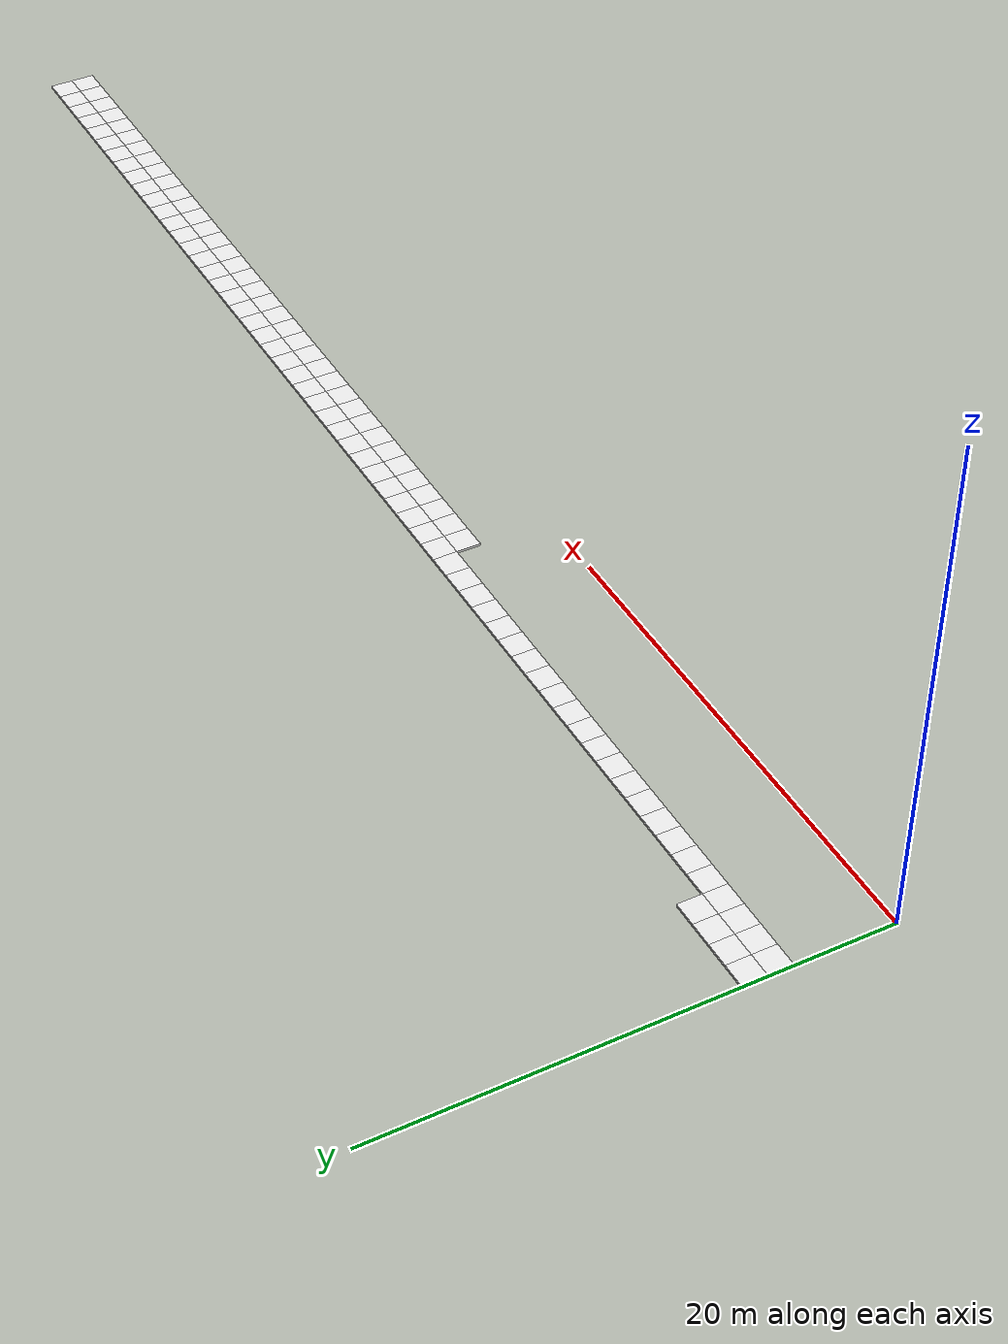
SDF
<sdf version="1.6">
 <world name="grid_world">
  <model name="cell_23_3">
   <static>true</static>
   <link name="link">
    <collision name="collision"><geometry><box><size>1 1 0.1</size></box></geometry></collision>
    <visual name="visual">
     <geometry><box><size>1 1 0.1</size></box></geometry>
     <material>
      <script><uri>file://media/materials/scripts/gazebo.material</uri><name>Gazebo/White</name></script>
     </material>
    </visual>
    <pose>23.5 3.5 0.05 0 0 0</pose>
   </link>
  </model>
  <model name="cell_24_3">
   <static>true</static>
   <link name="link">
    <collision name="collision"><geometry><box><size>1 1 0.1</size></box></geometry></collision>
    <visual name="visual">
     <geometry><box><size>1 1 0.1</size></box></geometry>
     <material>
      <script><uri>file://media/materials/scripts/gazebo.material</uri><name>Gazebo/White</name></script>
     </material>
    </visual>
    <pose>24.5 3.5 0.05 0 0 0</pose>
   </link>
  </model>
  <model name="cell_25_3">
   <static>true</static>
   <link name="link">
    <collision name="collision"><geometry><box><size>1 1 0.1</size></box></geometry></collision>
    <visual name="visual">
     <geometry><box><size>1 1 0.1</size></box></geometry>
     <material>
      <script><uri>file://media/materials/scripts/gazebo.material</uri><name>Gazebo/White</name></script>
     </material>
    </visual>
    <pose>25.5 3.5 0.05 0 0 0</pose>
   </link>
  </model>
  <model name="cell_26_3">
   <static>true</static>
   <link name="link">
    <collision name="collision"><geometry><box><size>1 1 0.1</size></box></geometry></collision>
    <visual name="visual">
     <geometry><box><size>1 1 0.1</size></box></geometry>
     <material>
      <script><uri>file://media/materials/scripts/gazebo.material</uri><name>Gazebo/White</name></script>
     </material>
    </visual>
    <pose>26.5 3.5 0.05 0 0 0</pose>
   </link>
  </model>
  <model name="cell_27_3">
   <static>true</static>
   <link name="link">
    <collision name="collision"><geometry><box><size>1 1 0.1</size></box></geometry></collision>
    <visual name="visual">
     <geometry><box><size>1 1 0.1</size></box></geometry>
     <material>
      <script><uri>file://media/materials/scripts/gazebo.material</uri><name>Gazebo/White</name></script>
     </material>
    </visual>
    <pose>27.5 3.5 0.05 0 0 0</pose>
   </link>
  </model>
  <model name="cell_28_3">
   <static>true</static>
   <link name="link">
    <collision name="collision"><geometry><box><size>1 1 0.1</size></box></geometry></collision>
    <visual name="visual">
     <geometry><box><size>1 1 0.1</size></box></geometry>
     <material>
      <script><uri>file://media/materials/scripts/gazebo.material</uri><name>Gazebo/White</name></script>
     </material>
    </visual>
    <pose>28.5 3.5 0.05 0 0 0</pose>
   </link>
  </model>
  <model name="cell_29_3">
   <static>true</static>
   <link name="link">
    <collision name="collision"><geometry><box><size>1 1 0.1</size></box></geometry></collision>
    <visual name="visual">
     <geometry><box><size>1 1 0.1</size></box></geometry>
     <material>
      <script><uri>file://media/materials/scripts/gazebo.material</uri><name>Gazebo/White</name></script>
     </material>
    </visual>
    <pose>29.5 3.5 0.05 0 0 0</pose>
   </link>
  </model>
  <model name="cell_30_3">
   <static>true</static>
   <link name="link">
    <collision name="collision"><geometry><box><size>1 1 0.1</size></box></geometry></collision>
    <visual name="visual">
     <geometry><box><size>1 1 0.1</size></box></geometry>
     <material>
      <script><uri>file://media/materials/scripts/gazebo.material</uri><name>Gazebo/White</name></script>
     </material>
    </visual>
    <pose>30.5 3.5 0.05 0 0 0</pose>
   </link>
  </model>
  <model name="cell_31_3">
   <static>true</static>
   <link name="link">
    <collision name="collision"><geometry><box><size>1 1 0.1</size></box></geometry></collision>
    <visual name="visual">
     <geometry><box><size>1 1 0.1</size></box></geometry>
     <material>
      <script><uri>file://media/materials/scripts/gazebo.material</uri><name>Gazebo/White</name></script>
     </material>
    </visual>
    <pose>31.5 3.5 0.05 0 0 0</pose>
   </link>
  </model>
  <model name="cell_32_3">
   <static>true</static>
   <link name="link">
    <collision name="collision"><geometry><box><size>1 1 0.1</size></box></geometry></collision>
    <visual name="visual">
     <geometry><box><size>1 1 0.1</size></box></geometry>
     <material>
      <script><uri>file://media/materials/scripts/gazebo.material</uri><name>Gazebo/White</name></script>
     </material>
    </visual>
    <pose>32.5 3.5 0.05 0 0 0</pose>
   </link>
  </model>
  <model name="cell_33_3">
   <static>true</static>
   <link name="link">
    <collision name="collision"><geometry><box><size>1 1 0.1</size></box></geometry></collision>
    <visual name="visual">
     <geometry><box><size>1 1 0.1</size></box></geometry>
     <material>
      <script><uri>file://media/materials/scripts/gazebo.material</uri><name>Gazebo/White</name></script>
     </material>
    </visual>
    <pose>33.5 3.5 0.05 0 0 0</pose>
   </link>
  </model>
  <model name="cell_34_3">
   <static>true</static>
   <link name="link">
    <collision name="collision"><geometry><box><size>1 1 0.1</size></box></geometry></collision>
    <visual name="visual">
     <geometry><box><size>1 1 0.1</size></box></geometry>
     <material>
      <script><uri>file://media/materials/scripts/gazebo.material</uri><name>Gazebo/White</name></script>
     </material>
    </visual>
    <pose>34.5 3.5 0.05 0 0 0</pose>
   </link>
  </model>
  <model name="cell_35_3">
   <static>true</static>
   <link name="link">
    <collision name="collision"><geometry><box><size>1 1 0.1</size></box></geometry></collision>
    <visual name="visual">
     <geometry><box><size>1 1 0.1</size></box></geometry>
     <material>
      <script><uri>file://media/materials/scripts/gazebo.material</uri><name>Gazebo/White</name></script>
     </material>
    </visual>
    <pose>35.5 3.5 0.05 0 0 0</pose>
   </link>
  </model>
  <model name="cell_36_3">
   <static>true</static>
   <link name="link">
    <collision name="collision"><geometry><box><size>1 1 0.1</size></box></geometry></collision>
    <visual name="visual">
     <geometry><box><size>1 1 0.1</size></box></geometry>
     <material>
      <script><uri>file://media/materials/scripts/gazebo.material</uri><name>Gazebo/White</name></script>
     </material>
    </visual>
    <pose>36.5 3.5 0.05 0 0 0</pose>
   </link>
  </model>
  <model name="cell_37_3">
   <static>true</static>
   <link name="link">
    <collision name="collision"><geometry><box><size>1 1 0.1</size></box></geometry></collision>
    <visual name="visual">
     <geometry><box><size>1 1 0.1</size></box></geometry>
     <material>
      <script><uri>file://media/materials/scripts/gazebo.material</uri><name>Gazebo/White</name></script>
     </material>
    </visual>
    <pose>37.5 3.5 0.05 0 0 0</pose>
   </link>
  </model>
  <model name="cell_38_3">
   <static>true</static>
   <link name="link">
    <collision name="collision"><geometry><box><size>1 1 0.1</size></box></geometry></collision>
    <visual name="visual">
     <geometry><box><size>1 1 0.1</size></box></geometry>
     <material>
      <script><uri>file://media/materials/scripts/gazebo.material</uri><name>Gazebo/White</name></script>
     </material>
    </visual>
    <pose>38.5 3.5 0.05 0 0 0</pose>
   </link>
  </model>
  <model name="cell_39_3">
   <static>true</static>
   <link name="link">
    <collision name="collision"><geometry><box><size>1 1 0.1</size></box></geometry></collision>
    <visual name="visual">
     <geometry><box><size>1 1 0.1</size></box></geometry>
     <material>
      <script><uri>file://media/materials/scripts/gazebo.material</uri><name>Gazebo/White</name></script>
     </material>
    </visual>
    <pose>39.5 3.5 0.05 0 0 0</pose>
   </link>
  </model>
  <model name="cell_40_3">
   <static>true</static>
   <link name="link">
    <collision name="collision"><geometry><box><size>1 1 0.1</size></box></geometry></collision>
    <visual name="visual">
     <geometry><box><size>1 1 0.1</size></box></geometry>
     <material>
      <script><uri>file://media/materials/scripts/gazebo.material</uri><name>Gazebo/White</name></script>
     </material>
    </visual>
    <pose>40.5 3.5 0.05 0 0 0</pose>
   </link>
  </model>
  <model name="cell_41_3">
   <static>true</static>
   <link name="link">
    <collision name="collision"><geometry><box><size>1 1 0.1</size></box></geometry></collision>
    <visual name="visual">
     <geometry><box><size>1 1 0.1</size></box></geometry>
     <material>
      <script><uri>file://media/materials/scripts/gazebo.material</uri><name>Gazebo/White</name></script>
     </material>
    </visual>
    <pose>41.5 3.5 0.05 0 0 0</pose>
   </link>
  </model>
  <model name="cell_42_3">
   <static>true</static>
   <link name="link">
    <collision name="collision"><geometry><box><size>1 1 0.1</size></box></geometry></collision>
    <visual name="visual">
     <geometry><box><size>1 1 0.1</size></box></geometry>
     <material>
      <script><uri>file://media/materials/scripts/gazebo.material</uri><name>Gazebo/White</name></script>
     </material>
    </visual>
    <pose>42.5 3.5 0.05 0 0 0</pose>
   </link>
  </model>
  <model name="cell_43_3">
   <static>true</static>
   <link name="link">
    <collision name="collision"><geometry><box><size>1 1 0.1</size></box></geometry></collision>
    <visual name="visual">
     <geometry><box><size>1 1 0.1</size></box></geometry>
     <material>
      <script><uri>file://media/materials/scripts/gazebo.material</uri><name>Gazebo/White</name></script>
     </material>
    </visual>
    <pose>43.5 3.5 0.05 0 0 0</pose>
   </link>
  </model>
  <model name="cell_44_3">
   <static>true</static>
   <link name="link">
    <collision name="collision"><geometry><box><size>1 1 0.1</size></box></geometry></collision>
    <visual name="visual">
     <geometry><box><size>1 1 0.1</size></box></geometry>
     <material>
      <script><uri>file://media/materials/scripts/gazebo.material</uri><name>Gazebo/White</name></script>
     </material>
    </visual>
    <pose>44.5 3.5 0.05 0 0 0</pose>
   </link>
  </model>
  <model name="cell_45_3">
   <static>true</static>
   <link name="link">
    <collision name="collision"><geometry><box><size>1 1 0.1</size></box></geometry></collision>
    <visual name="visual">
     <geometry><box><size>1 1 0.1</size></box></geometry>
     <material>
      <script><uri>file://media/materials/scripts/gazebo.material</uri><name>Gazebo/White</name></script>
     </material>
    </visual>
    <pose>45.5 3.5 0.05 0 0 0</pose>
   </link>
  </model>
  <model name="cell_46_3">
   <static>true</static>
   <link name="link">
    <collision name="collision"><geometry><box><size>1 1 0.1</size></box></geometry></collision>
    <visual name="visual">
     <geometry><box><size>1 1 0.1</size></box></geometry>
     <material>
      <script><uri>file://media/materials/scripts/gazebo.material</uri><name>Gazebo/White</name></script>
     </material>
    </visual>
    <pose>46.5 3.5 0.05 0 0 0</pose>
   </link>
  </model>
  <model name="cell_47_3">
   <static>true</static>
   <link name="link">
    <collision name="collision"><geometry><box><size>1 1 0.1</size></box></geometry></collision>
    <visual name="visual">
     <geometry><box><size>1 1 0.1</size></box></geometry>
     <material>
      <script><uri>file://media/materials/scripts/gazebo.material</uri><name>Gazebo/White</name></script>
     </material>
    </visual>
    <pose>47.5 3.5 0.05 0 0 0</pose>
   </link>
  </model>
  <model name="cell_48_3">
   <static>true</static>
   <link name="link">
    <collision name="collision"><geometry><box><size>1 1 0.1</size></box></geometry></collision>
    <visual name="visual">
     <geometry><box><size>1 1 0.1</size></box></geometry>
     <material>
      <script><uri>file://media/materials/scripts/gazebo.material</uri><name>Gazebo/White</name></script>
     </material>
    </visual>
    <pose>48.5 3.5 0.05 0 0 0</pose>
   </link>
  </model>
  <model name="cell_49_3">
   <static>true</static>
   <link name="link">
    <collision name="collision"><geometry><box><size>1 1 0.1</size></box></geometry></collision>
    <visual name="visual">
     <geometry><box><size>1 1 0.1</size></box></geometry>
     <material>
      <script><uri>file://media/materials/scripts/gazebo.material</uri><name>Gazebo/White</name></script>
     </material>
    </visual>
    <pose>49.5 3.5 0.05 0 0 0</pose>
   </link>
  </model>
  <model name="cell_50_3">
   <static>true</static>
   <link name="link">
    <collision name="collision"><geometry><box><size>1 1 0.1</size></box></geometry></collision>
    <visual name="visual">
     <geometry><box><size>1 1 0.1</size></box></geometry>
     <material>
      <script><uri>file://media/materials/scripts/gazebo.material</uri><name>Gazebo/White</name></script>
     </material>
    </visual>
    <pose>50.5 3.5 0.05 0 0 0</pose>
   </link>
  </model>
  <model name="cell_51_3">
   <static>true</static>
   <link name="link">
    <collision name="collision"><geometry><box><size>1 1 0.1</size></box></geometry></collision>
    <visual name="visual">
     <geometry><box><size>1 1 0.1</size></box></geometry>
     <material>
      <script><uri>file://media/materials/scripts/gazebo.material</uri><name>Gazebo/White</name></script>
     </material>
    </visual>
    <pose>51.5 3.5 0.05 0 0 0</pose>
   </link>
  </model>
  <model name="cell_52_3">
   <static>true</static>
   <link name="link">
    <collision name="collision"><geometry><box><size>1 1 0.1</size></box></geometry></collision>
    <visual name="visual">
     <geometry><box><size>1 1 0.1</size></box></geometry>
     <material>
      <script><uri>file://media/materials/scripts/gazebo.material</uri><name>Gazebo/White</name></script>
     </material>
    </visual>
    <pose>52.5 3.5 0.05 0 0 0</pose>
   </link>
  </model>
  <model name="cell_53_3">
   <static>true</static>
   <link name="link">
    <collision name="collision"><geometry><box><size>1 1 0.1</size></box></geometry></collision>
    <visual name="visual">
     <geometry><box><size>1 1 0.1</size></box></geometry>
     <material>
      <script><uri>file://media/materials/scripts/gazebo.material</uri><name>Gazebo/White</name></script>
     </material>
    </visual>
    <pose>53.5 3.5 0.05 0 0 0</pose>
   </link>
  </model>
  <model name="cell_54_3">
   <static>true</static>
   <link name="link">
    <collision name="collision"><geometry><box><size>1 1 0.1</size></box></geometry></collision>
    <visual name="visual">
     <geometry><box><size>1 1 0.1</size></box></geometry>
     <material>
      <script><uri>file://media/materials/scripts/gazebo.material</uri><name>Gazebo/White</name></script>
     </material>
    </visual>
    <pose>54.5 3.5 0.05 0 0 0</pose>
   </link>
  </model>
  <model name="cell_55_3">
   <static>true</static>
   <link name="link">
    <collision name="collision"><geometry><box><size>1 1 0.1</size></box></geometry></collision>
    <visual name="visual">
     <geometry><box><size>1 1 0.1</size></box></geometry>
     <material>
      <script><uri>file://media/materials/scripts/gazebo.material</uri><name>Gazebo/White</name></script>
     </material>
    </visual>
    <pose>55.5 3.5 0.05 0 0 0</pose>
   </link>
  </model>
  <model name="cell_56_3">
   <static>true</static>
   <link name="link">
    <collision name="collision"><geometry><box><size>1 1 0.1</size></box></geometry></collision>
    <visual name="visual">
     <geometry><box><size>1 1 0.1</size></box></geometry>
     <material>
      <script><uri>file://media/materials/scripts/gazebo.material</uri><name>Gazebo/White</name></script>
     </material>
    </visual>
    <pose>56.5 3.5 0.05 0 0 0</pose>
   </link>
  </model>
  <model name="cell_57_3">
   <static>true</static>
   <link name="link">
    <collision name="collision"><geometry><box><size>1 1 0.1</size></box></geometry></collision>
    <visual name="visual">
     <geometry><box><size>1 1 0.1</size></box></geometry>
     <material>
      <script><uri>file://media/materials/scripts/gazebo.material</uri><name>Gazebo/White</name></script>
     </material>
    </visual>
    <pose>57.5 3.5 0.05 0 0 0</pose>
   </link>
  </model>
  <model name="cell_58_3">
   <static>true</static>
   <link name="link">
    <collision name="collision"><geometry><box><size>1 1 0.1</size></box></geometry></collision>
    <visual name="visual">
     <geometry><box><size>1 1 0.1</size></box></geometry>
     <material>
      <script><uri>file://media/materials/scripts/gazebo.material</uri><name>Gazebo/White</name></script>
     </material>
    </visual>
    <pose>58.5 3.5 0.05 0 0 0</pose>
   </link>
  </model>
  <model name="cell_59_3">
   <static>true</static>
   <link name="link">
    <collision name="collision"><geometry><box><size>1 1 0.1</size></box></geometry></collision>
    <visual name="visual">
     <geometry><box><size>1 1 0.1</size></box></geometry>
     <material>
      <script><uri>file://media/materials/scripts/gazebo.material</uri><name>Gazebo/White</name></script>
     </material>
    </visual>
    <pose>59.5 3.5 0.05 0 0 0</pose>
   </link>
  </model>
  <model name="cell_0_4">
   <static>true</static>
   <link name="link">
    <collision name="collision"><geometry><box><size>1 1 0.1</size></box></geometry></collision>
    <visual name="visual">
     <geometry><box><size>1 1 0.1</size></box></geometry>
     <material>
      <script><uri>file://media/materials/scripts/gazebo.material</uri><name>Gazebo/White</name></script>
     </material>
    </visual>
    <pose>0.5 4.5 0.05 0 0 0</pose>
   </link>
  </model>
  <model name="cell_1_4">
   <static>true</static>
   <link name="link">
    <collision name="collision"><geometry><box><size>1 1 0.1</size></box></geometry></collision>
    <visual name="visual">
     <geometry><box><size>1 1 0.1</size></box></geometry>
     <material>
      <script><uri>file://media/materials/scripts/gazebo.material</uri><name>Gazebo/White</name></script>
     </material>
    </visual>
    <pose>1.5 4.5 0.05 0 0 0</pose>
   </link>
  </model>
  <model name="cell_2_4">
   <static>true</static>
   <link name="link">
    <collision name="collision"><geometry><box><size>1 1 0.1</size></box></geometry></collision>
    <visual name="visual">
     <geometry><box><size>1 1 0.1</size></box></geometry>
     <material>
      <script><uri>file://media/materials/scripts/gazebo.material</uri><name>Gazebo/White</name></script>
     </material>
    </visual>
    <pose>2.5 4.5 0.05 0 0 0</pose>
   </link>
  </model>
  <model name="cell_3_4">
   <static>true</static>
   <link name="link">
    <collision name="collision"><geometry><box><size>1 1 0.1</size></box></geometry></collision>
    <visual name="visual">
     <geometry><box><size>1 1 0.1</size></box></geometry>
     <material>
      <script><uri>file://media/materials/scripts/gazebo.material</uri><name>Gazebo/White</name></script>
     </material>
    </visual>
    <pose>3.5 4.5 0.05 0 0 0</pose>
   </link>
  </model>
  <model name="cell_4_4">
   <static>true</static>
   <link name="link">
    <collision name="collision"><geometry><box><size>1 1 0.1</size></box></geometry></collision>
    <visual name="visual">
     <geometry><box><size>1 1 0.1</size></box></geometry>
     <material>
      <script><uri>file://media/materials/scripts/gazebo.material</uri><name>Gazebo/White</name></script>
     </material>
    </visual>
    <pose>4.5 4.5 0.05 0 0 0</pose>
   </link>
  </model>
  <model name="cell_5_4">
   <static>true</static>
   <link name="link">
    <collision name="collision"><geometry><box><size>1 1 0.1</size></box></geometry></collision>
    <visual name="visual">
     <geometry><box><size>1 1 0.1</size></box></geometry>
     <material>
      <script><uri>file://media/materials/scripts/gazebo.material</uri><name>Gazebo/White</name></script>
     </material>
    </visual>
    <pose>5.5 4.5 0.05 0 0 0</pose>
   </link>
  </model>
  <model name="cell_6_4">
   <static>true</static>
   <link name="link">
    <collision name="collision"><geometry><box><size>1 1 0.1</size></box></geometry></collision>
    <visual name="visual">
     <geometry><box><size>1 1 0.1</size></box></geometry>
     <material>
      <script><uri>file://media/materials/scripts/gazebo.material</uri><name>Gazebo/White</name></script>
     </material>
    </visual>
    <pose>6.5 4.5 0.05 0 0 0</pose>
   </link>
  </model>
  <model name="cell_7_4">
   <static>true</static>
   <link name="link">
    <collision name="collision"><geometry><box><size>1 1 0.1</size></box></geometry></collision>
    <visual name="visual">
     <geometry><box><size>1 1 0.1</size></box></geometry>
     <material>
      <script><uri>file://media/materials/scripts/gazebo.material</uri><name>Gazebo/White</name></script>
     </material>
    </visual>
    <pose>7.5 4.5 0.05 0 0 0</pose>
   </link>
  </model>
  <model name="cell_8_4">
   <static>true</static>
   <link name="link">
    <collision name="collision"><geometry><box><size>1 1 0.1</size></box></geometry></collision>
    <visual name="visual">
     <geometry><box><size>1 1 0.1</size></box></geometry>
     <material>
      <script><uri>file://media/materials/scripts/gazebo.material</uri><name>Gazebo/White</name></script>
     </material>
    </visual>
    <pose>8.5 4.5 0.05 0 0 0</pose>
   </link>
  </model>
  <model name="cell_9_4">
   <static>true</static>
   <link name="link">
    <collision name="collision"><geometry><box><size>1 1 0.1</size></box></geometry></collision>
    <visual name="visual">
     <geometry><box><size>1 1 0.1</size></box></geometry>
     <material>
      <script><uri>file://media/materials/scripts/gazebo.material</uri><name>Gazebo/White</name></script>
     </material>
    </visual>
    <pose>9.5 4.5 0.05 0 0 0</pose>
   </link>
  </model>
  <model name="cell_10_4">
   <static>true</static>
   <link name="link">
    <collision name="collision"><geometry><box><size>1 1 0.1</size></box></geometry></collision>
    <visual name="visual">
     <geometry><box><size>1 1 0.1</size></box></geometry>
     <material>
      <script><uri>file://media/materials/scripts/gazebo.material</uri><name>Gazebo/White</name></script>
     </material>
    </visual>
    <pose>10.5 4.5 0.05 0 0 0</pose>
   </link>
  </model>
  <model name="cell_11_4">
   <static>true</static>
   <link name="link">
    <collision name="collision"><geometry><box><size>1 1 0.1</size></box></geometry></collision>
    <visual name="visual">
     <geometry><box><size>1 1 0.1</size></box></geometry>
     <material>
      <script><uri>file://media/materials/scripts/gazebo.material</uri><name>Gazebo/White</name></script>
     </material>
    </visual>
    <pose>11.5 4.5 0.05 0 0 0</pose>
   </link>
  </model>
  <model name="cell_12_4">
   <static>true</static>
   <link name="link">
    <collision name="collision"><geometry><box><size>1 1 0.1</size></box></geometry></collision>
    <visual name="visual">
     <geometry><box><size>1 1 0.1</size></box></geometry>
     <material>
      <script><uri>file://media/materials/scripts/gazebo.material</uri><name>Gazebo/White</name></script>
     </material>
    </visual>
    <pose>12.5 4.5 0.05 0 0 0</pose>
   </link>
  </model>
  <model name="cell_13_4">
   <static>true</static>
   <link name="link">
    <collision name="collision"><geometry><box><size>1 1 0.1</size></box></geometry></collision>
    <visual name="visual">
     <geometry><box><size>1 1 0.1</size></box></geometry>
     <material>
      <script><uri>file://media/materials/scripts/gazebo.material</uri><name>Gazebo/White</name></script>
     </material>
    </visual>
    <pose>13.5 4.5 0.05 0 0 0</pose>
   </link>
  </model>
  <model name="cell_14_4">
   <static>true</static>
   <link name="link">
    <collision name="collision"><geometry><box><size>1 1 0.1</size></box></geometry></collision>
    <visual name="visual">
     <geometry><box><size>1 1 0.1</size></box></geometry>
     <material>
      <script><uri>file://media/materials/scripts/gazebo.material</uri><name>Gazebo/White</name></script>
     </material>
    </visual>
    <pose>14.5 4.5 0.05 0 0 0</pose>
   </link>
  </model>
  <model name="cell_15_4">
   <static>true</static>
   <link name="link">
    <collision name="collision"><geometry><box><size>1 1 0.1</size></box></geometry></collision>
    <visual name="visual">
     <geometry><box><size>1 1 0.1</size></box></geometry>
     <material>
      <script><uri>file://media/materials/scripts/gazebo.material</uri><name>Gazebo/White</name></script>
     </material>
    </visual>
    <pose>15.5 4.5 0.05 0 0 0</pose>
   </link>
  </model>
  <model name="cell_16_4">
   <static>true</static>
   <link name="link">
    <collision name="collision"><geometry><box><size>1 1 0.1</size></box></geometry></collision>
    <visual name="visual">
     <geometry><box><size>1 1 0.1</size></box></geometry>
     <material>
      <script><uri>file://media/materials/scripts/gazebo.material</uri><name>Gazebo/White</name></script>
     </material>
    </visual>
    <pose>16.5 4.5 0.05 0 0 0</pose>
   </link>
  </model>
  <model name="cell_17_4">
   <static>true</static>
   <link name="link">
    <collision name="collision"><geometry><box><size>1 1 0.1</size></box></geometry></collision>
    <visual name="visual">
     <geometry><box><size>1 1 0.1</size></box></geometry>
     <material>
      <script><uri>file://media/materials/scripts/gazebo.material</uri><name>Gazebo/White</name></script>
     </material>
    </visual>
    <pose>17.5 4.5 0.05 0 0 0</pose>
   </link>
  </model>
  <model name="cell_18_4">
   <static>true</static>
   <link name="link">
    <collision name="collision"><geometry><box><size>1 1 0.1</size></box></geometry></collision>
    <visual name="visual">
     <geometry><box><size>1 1 0.1</size></box></geometry>
     <material>
      <script><uri>file://media/materials/scripts/gazebo.material</uri><name>Gazebo/White</name></script>
     </material>
    </visual>
    <pose>18.5 4.5 0.05 0 0 0</pose>
   </link>
  </model>
  <model name="cell_19_4">
   <static>true</static>
   <link name="link">
    <collision name="collision"><geometry><box><size>1 1 0.1</size></box></geometry></collision>
    <visual name="visual">
     <geometry><box><size>1 1 0.1</size></box></geometry>
     <material>
      <script><uri>file://media/materials/scripts/gazebo.material</uri><name>Gazebo/White</name></script>
     </material>
    </visual>
    <pose>19.5 4.5 0.05 0 0 0</pose>
   </link>
  </model>
  <model name="cell_20_4">
   <static>true</static>
   <link name="link">
    <collision name="collision"><geometry><box><size>1 1 0.1</size></box></geometry></collision>
    <visual name="visual">
     <geometry><box><size>1 1 0.1</size></box></geometry>
     <material>
      <script><uri>file://media/materials/scripts/gazebo.material</uri><name>Gazebo/White</name></script>
     </material>
    </visual>
    <pose>20.5 4.5 0.05 0 0 0</pose>
   </link>
  </model>
  <model name="cell_21_4">
   <static>true</static>
   <link name="link">
    <collision name="collision"><geometry><box><size>1 1 0.1</size></box></geometry></collision>
    <visual name="visual">
     <geometry><box><size>1 1 0.1</size></box></geometry>
     <material>
      <script><uri>file://media/materials/scripts/gazebo.material</uri><name>Gazebo/White</name></script>
     </material>
    </visual>
    <pose>21.5 4.5 0.05 0 0 0</pose>
   </link>
  </model>
  <model name="cell_22_4">
   <static>true</static>
   <link name="link">
    <collision name="collision"><geometry><box><size>1 1 0.1</size></box></geometry></collision>
    <visual name="visual">
     <geometry><box><size>1 1 0.1</size></box></geometry>
     <material>
      <script><uri>file://media/materials/scripts/gazebo.material</uri><name>Gazebo/White</name></script>
     </material>
    </visual>
    <pose>22.5 4.5 0.05 0 0 0</pose>
   </link>
  </model>
  <model name="cell_23_4">
   <static>true</static>
   <link name="link">
    <collision name="collision"><geometry><box><size>1 1 0.1</size></box></geometry></collision>
    <visual name="visual">
     <geometry><box><size>1 1 0.1</size></box></geometry>
     <material>
      <script><uri>file://media/materials/scripts/gazebo.material</uri><name>Gazebo/White</name></script>
     </material>
    </visual>
    <pose>23.5 4.5 0.05 0 0 0</pose>
   </link>
  </model>
  <model name="cell_24_4">
   <static>true</static>
   <link name="link">
    <collision name="collision"><geometry><box><size>1 1 0.1</size></box></geometry></collision>
    <visual name="visual">
     <geometry><box><size>1 1 0.1</size></box></geometry>
     <material>
      <script><uri>file://media/materials/scripts/gazebo.material</uri><name>Gazebo/White</name></script>
     </material>
    </visual>
    <pose>24.5 4.5 0.05 0 0 0</pose>
   </link>
  </model>
  <model name="cell_25_4">
   <static>true</static>
   <link name="link">
    <collision name="collision"><geometry><box><size>1 1 0.1</size></box></geometry></collision>
    <visual name="visual">
     <geometry><box><size>1 1 0.1</size></box></geometry>
     <material>
      <script><uri>file://media/materials/scripts/gazebo.material</uri><name>Gazebo/White</name></script>
     </material>
    </visual>
    <pose>25.5 4.5 0.05 0 0 0</pose>
   </link>
  </model>
  <model name="cell_26_4">
   <static>true</static>
   <link name="link">
    <collision name="collision"><geometry><box><size>1 1 0.1</size></box></geometry></collision>
    <visual name="visual">
     <geometry><box><size>1 1 0.1</size></box></geometry>
     <material>
      <script><uri>file://media/materials/scripts/gazebo.material</uri><name>Gazebo/White</name></script>
     </material>
    </visual>
    <pose>26.5 4.5 0.05 0 0 0</pose>
   </link>
  </model>
  <model name="cell_27_4">
   <static>true</static>
   <link name="link">
    <collision name="collision"><geometry><box><size>1 1 0.1</size></box></geometry></collision>
    <visual name="visual">
     <geometry><box><size>1 1 0.1</size></box></geometry>
     <material>
      <script><uri>file://media/materials/scripts/gazebo.material</uri><name>Gazebo/White</name></script>
     </material>
    </visual>
    <pose>27.5 4.5 0.05 0 0 0</pose>
   </link>
  </model>
  <model name="cell_28_4">
   <static>true</static>
   <link name="link">
    <collision name="collision"><geometry><box><size>1 1 0.1</size></box></geometry></collision>
    <visual name="visual">
     <geometry><box><size>1 1 0.1</size></box></geometry>
     <material>
      <script><uri>file://media/materials/scripts/gazebo.material</uri><name>Gazebo/White</name></script>
     </material>
    </visual>
    <pose>28.5 4.5 0.05 0 0 0</pose>
   </link>
  </model>
  <model name="cell_29_4">
   <static>true</static>
   <link name="link">
    <collision name="collision"><geometry><box><size>1 1 0.1</size></box></geometry></collision>
    <visual name="visual">
     <geometry><box><size>1 1 0.1</size></box></geometry>
     <material>
      <script><uri>file://media/materials/scripts/gazebo.material</uri><name>Gazebo/White</name></script>
     </material>
    </visual>
    <pose>29.5 4.5 0.05 0 0 0</pose>
   </link>
  </model>
  <model name="cell_30_4">
   <static>true</static>
   <link name="link">
    <collision name="collision"><geometry><box><size>1 1 0.1</size></box></geometry></collision>
    <visual name="visual">
     <geometry><box><size>1 1 0.1</size></box></geometry>
     <material>
      <script><uri>file://media/materials/scripts/gazebo.material</uri><name>Gazebo/White</name></script>
     </material>
    </visual>
    <pose>30.5 4.5 0.05 0 0 0</pose>
   </link>
  </model>
  <model name="cell_31_4">
   <static>true</static>
   <link name="link">
    <collision name="collision"><geometry><box><size>1 1 0.1</size></box></geometry></collision>
    <visual name="visual">
     <geometry><box><size>1 1 0.1</size></box></geometry>
     <material>
      <script><uri>file://media/materials/scripts/gazebo.material</uri><name>Gazebo/White</name></script>
     </material>
    </visual>
    <pose>31.5 4.5 0.05 0 0 0</pose>
   </link>
  </model>
  <model name="cell_32_4">
   <static>true</static>
   <link name="link">
    <collision name="collision"><geometry><box><size>1 1 0.1</size></box></geometry></collision>
    <visual name="visual">
     <geometry><box><size>1 1 0.1</size></box></geometry>
     <material>
      <script><uri>file://media/materials/scripts/gazebo.material</uri><name>Gazebo/White</name></script>
     </material>
    </visual>
    <pose>32.5 4.5 0.05 0 0 0</pose>
   </link>
  </model>
  <model name="cell_33_4">
   <static>true</static>
   <link name="link">
    <collision name="collision"><geometry><box><size>1 1 0.1</size></box></geometry></collision>
    <visual name="visual">
     <geometry><box><size>1 1 0.1</size></box></geometry>
     <material>
      <script><uri>file://media/materials/scripts/gazebo.material</uri><name>Gazebo/White</name></script>
     </material>
    </visual>
    <pose>33.5 4.5 0.05 0 0 0</pose>
   </link>
  </model>
  <model name="cell_34_4">
   <static>true</static>
   <link name="link">
    <collision name="collision"><geometry><box><size>1 1 0.1</size></box></geometry></collision>
    <visual name="visual">
     <geometry><box><size>1 1 0.1</size></box></geometry>
     <material>
      <script><uri>file://media/materials/scripts/gazebo.material</uri><name>Gazebo/White</name></script>
     </material>
    </visual>
    <pose>34.5 4.5 0.05 0 0 0</pose>
   </link>
  </model>
  <model name="cell_35_4">
   <static>true</static>
   <link name="link">
    <collision name="collision"><geometry><box><size>1 1 0.1</size></box></geometry></collision>
    <visual name="visual">
     <geometry><box><size>1 1 0.1</size></box></geometry>
     <material>
      <script><uri>file://media/materials/scripts/gazebo.material</uri><name>Gazebo/White</name></script>
     </material>
    </visual>
    <pose>35.5 4.5 0.05 0 0 0</pose>
   </link>
  </model>
  <model name="cell_36_4">
   <static>true</static>
   <link name="link">
    <collision name="collision"><geometry><box><size>1 1 0.1</size></box></geometry></collision>
    <visual name="visual">
     <geometry><box><size>1 1 0.1</size></box></geometry>
     <material>
      <script><uri>file://media/materials/scripts/gazebo.material</uri><name>Gazebo/White</name></script>
     </material>
    </visual>
    <pose>36.5 4.5 0.05 0 0 0</pose>
   </link>
  </model>
  <model name="cell_37_4">
   <static>true</static>
   <link name="link">
    <collision name="collision"><geometry><box><size>1 1 0.1</size></box></geometry></collision>
    <visual name="visual">
     <geometry><box><size>1 1 0.1</size></box></geometry>
     <material>
      <script><uri>file://media/materials/scripts/gazebo.material</uri><name>Gazebo/White</name></script>
     </material>
    </visual>
    <pose>37.5 4.5 0.05 0 0 0</pose>
   </link>
  </model>
  <model name="cell_38_4">
   <static>true</static>
   <link name="link">
    <collision name="collision"><geometry><box><size>1 1 0.1</size></box></geometry></collision>
    <visual name="visual">
     <geometry><box><size>1 1 0.1</size></box></geometry>
     <material>
      <script><uri>file://media/materials/scripts/gazebo.material</uri><name>Gazebo/White</name></script>
     </material>
    </visual>
    <pose>38.5 4.5 0.05 0 0 0</pose>
   </link>
  </model>
  <model name="cell_39_4">
   <static>true</static>
   <link name="link">
    <collision name="collision"><geometry><box><size>1 1 0.1</size></box></geometry></collision>
    <visual name="visual">
     <geometry><box><size>1 1 0.1</size></box></geometry>
     <material>
      <script><uri>file://media/materials/scripts/gazebo.material</uri><name>Gazebo/White</name></script>
     </material>
    </visual>
    <pose>39.5 4.5 0.05 0 0 0</pose>
   </link>
  </model>
  <model name="cell_40_4">
   <static>true</static>
   <link name="link">
    <collision name="collision"><geometry><box><size>1 1 0.1</size></box></geometry></collision>
    <visual name="visual">
     <geometry><box><size>1 1 0.1</size></box></geometry>
     <material>
      <script><uri>file://media/materials/scripts/gazebo.material</uri><name>Gazebo/White</name></script>
     </material>
    </visual>
    <pose>40.5 4.5 0.05 0 0 0</pose>
   </link>
  </model>
  <model name="cell_41_4">
   <static>true</static>
   <link name="link">
    <collision name="collision"><geometry><box><size>1 1 0.1</size></box></geometry></collision>
    <visual name="visual">
     <geometry><box><size>1 1 0.1</size></box></geometry>
     <material>
      <script><uri>file://media/materials/scripts/gazebo.material</uri><name>Gazebo/White</name></script>
     </material>
    </visual>
    <pose>41.5 4.5 0.05 0 0 0</pose>
   </link>
  </model>
  <model name="cell_42_4">
   <static>true</static>
   <link name="link">
    <collision name="collision"><geometry><box><size>1 1 0.1</size></box></geometry></collision>
    <visual name="visual">
     <geometry><box><size>1 1 0.1</size></box></geometry>
     <material>
      <script><uri>file://media/materials/scripts/gazebo.material</uri><name>Gazebo/White</name></script>
     </material>
    </visual>
    <pose>42.5 4.5 0.05 0 0 0</pose>
   </link>
  </model>
  <model name="cell_43_4">
   <static>true</static>
   <link name="link">
    <collision name="collision"><geometry><box><size>1 1 0.1</size></box></geometry></collision>
    <visual name="visual">
     <geometry><box><size>1 1 0.1</size></box></geometry>
     <material>
      <script><uri>file://media/materials/scripts/gazebo.material</uri><name>Gazebo/White</name></script>
     </material>
    </visual>
    <pose>43.5 4.5 0.05 0 0 0</pose>
   </link>
  </model>
  <model name="cell_44_4">
   <static>true</static>
   <link name="link">
    <collision name="collision"><geometry><box><size>1 1 0.1</size></box></geometry></collision>
    <visual name="visual">
     <geometry><box><size>1 1 0.1</size></box></geometry>
     <material>
      <script><uri>file://media/materials/scripts/gazebo.material</uri><name>Gazebo/White</name></script>
     </material>
    </visual>
    <pose>44.5 4.5 0.05 0 0 0</pose>
   </link>
  </model>
  <model name="cell_45_4">
   <static>true</static>
   <link name="link">
    <collision name="collision"><geometry><box><size>1 1 0.1</size></box></geometry></collision>
    <visual name="visual">
     <geometry><box><size>1 1 0.1</size></box></geometry>
     <material>
      <script><uri>file://media/materials/scripts/gazebo.material</uri><name>Gazebo/White</name></script>
     </material>
    </visual>
    <pose>45.5 4.5 0.05 0 0 0</pose>
   </link>
  </model>
  <model name="cell_46_4">
   <static>true</static>
   <link name="link">
    <collision name="collision"><geometry><box><size>1 1 0.1</size></box></geometry></collision>
    <visual name="visual">
     <geometry><box><size>1 1 0.1</size></box></geometry>
     <material>
      <script><uri>file://media/materials/scripts/gazebo.material</uri><name>Gazebo/White</name></script>
     </material>
    </visual>
    <pose>46.5 4.5 0.05 0 0 0</pose>
   </link>
  </model>
  <model name="cell_47_4">
   <static>true</static>
   <link name="link">
    <collision name="collision"><geometry><box><size>1 1 0.1</size></box></geometry></collision>
    <visual name="visual">
     <geometry><box><size>1 1 0.1</size></box></geometry>
     <material>
      <script><uri>file://media/materials/scripts/gazebo.material</uri><name>Gazebo/White</name></script>
     </material>
    </visual>
    <pose>47.5 4.5 0.05 0 0 0</pose>
   </link>
  </model>
  <model name="cell_48_4">
   <static>true</static>
   <link name="link">
    <collision name="collision"><geometry><box><size>1 1 0.1</size></box></geometry></collision>
    <visual name="visual">
     <geometry><box><size>1 1 0.1</size></box></geometry>
     <material>
      <script><uri>file://media/materials/scripts/gazebo.material</uri><name>Gazebo/White</name></script>
     </material>
    </visual>
    <pose>48.5 4.5 0.05 0 0 0</pose>
   </link>
  </model>
  <model name="cell_49_4">
   <static>true</static>
   <link name="link">
    <collision name="collision"><geometry><box><size>1 1 0.1</size></box></geometry></collision>
    <visual name="visual">
     <geometry><box><size>1 1 0.1</size></box></geometry>
     <material>
      <script><uri>file://media/materials/scripts/gazebo.material</uri><name>Gazebo/White</name></script>
     </material>
    </visual>
    <pose>49.5 4.5 0.05 0 0 0</pose>
   </link>
  </model>
  <model name="cell_50_4">
   <static>true</static>
   <link name="link">
    <collision name="collision"><geometry><box><size>1 1 0.1</size></box></geometry></collision>
    <visual name="visual">
     <geometry><box><size>1 1 0.1</size></box></geometry>
     <material>
      <script><uri>file://media/materials/scripts/gazebo.material</uri><name>Gazebo/White</name></script>
     </material>
    </visual>
    <pose>50.5 4.5 0.05 0 0 0</pose>
   </link>
  </model>
  <model name="cell_51_4">
   <static>true</static>
   <link name="link">
    <collision name="collision"><geometry><box><size>1 1 0.1</size></box></geometry></collision>
    <visual name="visual">
     <geometry><box><size>1 1 0.1</size></box></geometry>
     <material>
      <script><uri>file://media/materials/scripts/gazebo.material</uri><name>Gazebo/White</name></script>
     </material>
    </visual>
    <pose>51.5 4.5 0.05 0 0 0</pose>
   </link>
  </model>
  <model name="cell_52_4">
   <static>true</static>
   <link name="link">
    <collision name="collision"><geometry><box><size>1 1 0.1</size></box></geometry></collision>
    <visual name="visual">
     <geometry><box><size>1 1 0.1</size></box></geometry>
     <material>
      <script><uri>file://media/materials/scripts/gazebo.material</uri><name>Gazebo/White</name></script>
     </material>
    </visual>
    <pose>52.5 4.5 0.05 0 0 0</pose>
   </link>
  </model>
  <model name="cell_53_4">
   <static>true</static>
   <link name="link">
    <collision name="collision"><geometry><box><size>1 1 0.1</size></box></geometry></collision>
    <visual name="visual">
     <geometry><box><size>1 1 0.1</size></box></geometry>
     <material>
      <script><uri>file://media/materials/scripts/gazebo.material</uri><name>Gazebo/White</name></script>
     </material>
    </visual>
    <pose>53.5 4.5 0.05 0 0 0</pose>
   </link>
  </model>
  <model name="cell_54_4">
   <static>true</static>
   <link name="link">
    <collision name="collision"><geometry><box><size>1 1 0.1</size></box></geometry></collision>
    <visual name="visual">
     <geometry><box><size>1 1 0.1</size></box></geometry>
     <material>
      <script><uri>file://media/materials/scripts/gazebo.material</uri><name>Gazebo/White</name></script>
     </material>
    </visual>
    <pose>54.5 4.5 0.05 0 0 0</pose>
   </link>
  </model>
  <model name="cell_55_4">
   <static>true</static>
   <link name="link">
    <collision name="collision"><geometry><box><size>1 1 0.1</size></box></geometry></collision>
    <visual name="visual">
     <geometry><box><size>1 1 0.1</size></box></geometry>
     <material>
      <script><uri>file://media/materials/scripts/gazebo.material</uri><name>Gazebo/White</name></script>
     </material>
    </visual>
    <pose>55.5 4.5 0.05 0 0 0</pose>
   </link>
  </model>
  <model name="cell_56_4">
   <static>true</static>
   <link name="link">
    <collision name="collision"><geometry><box><size>1 1 0.1</size></box></geometry></collision>
    <visual name="visual">
     <geometry><box><size>1 1 0.1</size></box></geometry>
     <material>
      <script><uri>file://media/materials/scripts/gazebo.material</uri><name>Gazebo/White</name></script>
     </material>
    </visual>
    <pose>56.5 4.5 0.05 0 0 0</pose>
   </link>
  </model>
  <model name="cell_57_4">
   <static>true</static>
   <link name="link">
    <collision name="collision"><geometry><box><size>1 1 0.1</size></box></geometry></collision>
    <visual name="visual">
     <geometry><box><size>1 1 0.1</size></box></geometry>
     <material>
      <script><uri>file://media/materials/scripts/gazebo.material</uri><name>Gazebo/White</name></script>
     </material>
    </visual>
    <pose>57.5 4.5 0.05 0 0 0</pose>
   </link>
  </model>
  <model name="cell_58_4">
   <static>true</static>
   <link name="link">
    <collision name="collision"><geometry><box><size>1 1 0.1</size></box></geometry></collision>
    <visual name="visual">
     <geometry><box><size>1 1 0.1</size></box></geometry>
     <material>
      <script><uri>file://media/materials/scripts/gazebo.material</uri><name>Gazebo/White</name></script>
     </material>
    </visual>
    <pose>58.5 4.5 0.05 0 0 0</pose>
   </link>
  </model>
  <model name="cell_59_4">
   <static>true</static>
   <link name="link">
    <collision name="collision"><geometry><box><size>1 1 0.1</size></box></geometry></collision>
    <visual name="visual">
     <geometry><box><size>1 1 0.1</size></box></geometry>
     <material>
      <script><uri>file://media/materials/scripts/gazebo.material</uri><name>Gazebo/White</name></script>
     </material>
    </visual>
    <pose>59.5 4.5 0.05 0 0 0</pose>
   </link>
  </model>
  <model name="cell_0_5">
   <static>true</static>
   <link name="link">
    <collision name="collision"><geometry><box><size>1 1 0.1</size></box></geometry></collision>
    <visual name="visual">
     <geometry><box><size>1 1 0.1</size></box></geometry>
     <material>
      <script><uri>file://media/materials/scripts/gazebo.material</uri><name>Gazebo/White</name></script>
     </material>
    </visual>
    <pose>0.5 5.5 0.05 0 0 0</pose>
   </link>
  </model>
  <model name="cell_1_5">
   <static>true</static>
   <link name="link">
    <collision name="collision"><geometry><box><size>1 1 0.1</size></box></geometry></collision>
    <visual name="visual">
     <geometry><box><size>1 1 0.1</size></box></geometry>
     <material>
      <script><uri>file://media/materials/scripts/gazebo.material</uri><name>Gazebo/White</name></script>
     </material>
    </visual>
    <pose>1.5 5.5 0.05 0 0 0</pose>
   </link>
  </model>
  <model name="cell_2_5">
   <static>true</static>
   <link name="link">
    <collision name="collision"><geometry><box><size>1 1 0.1</size></box></geometry></collision>
    <visual name="visual">
     <geometry><box><size>1 1 0.1</size></box></geometry>
     <material>
      <script><uri>file://media/materials/scripts/gazebo.material</uri><name>Gazebo/White</name></script>
     </material>
    </visual>
    <pose>2.5 5.5 0.05 0 0 0</pose>
   </link>
  </model>
  <model name="cell_3_5">
   <static>true</static>
   <link name="link">
    <collision name="collision"><geometry><box><size>1 1 0.1</size></box></geometry></collision>
    <visual name="visual">
     <geometry><box><size>1 1 0.1</size></box></geometry>
     <material>
      <script><uri>file://media/materials/scripts/gazebo.material</uri><name>Gazebo/White</name></script>
     </material>
    </visual>
    <pose>3.5 5.5 0.05 0 0 0</pose>
   </link>
  </model>
 </world>
</sdf>
